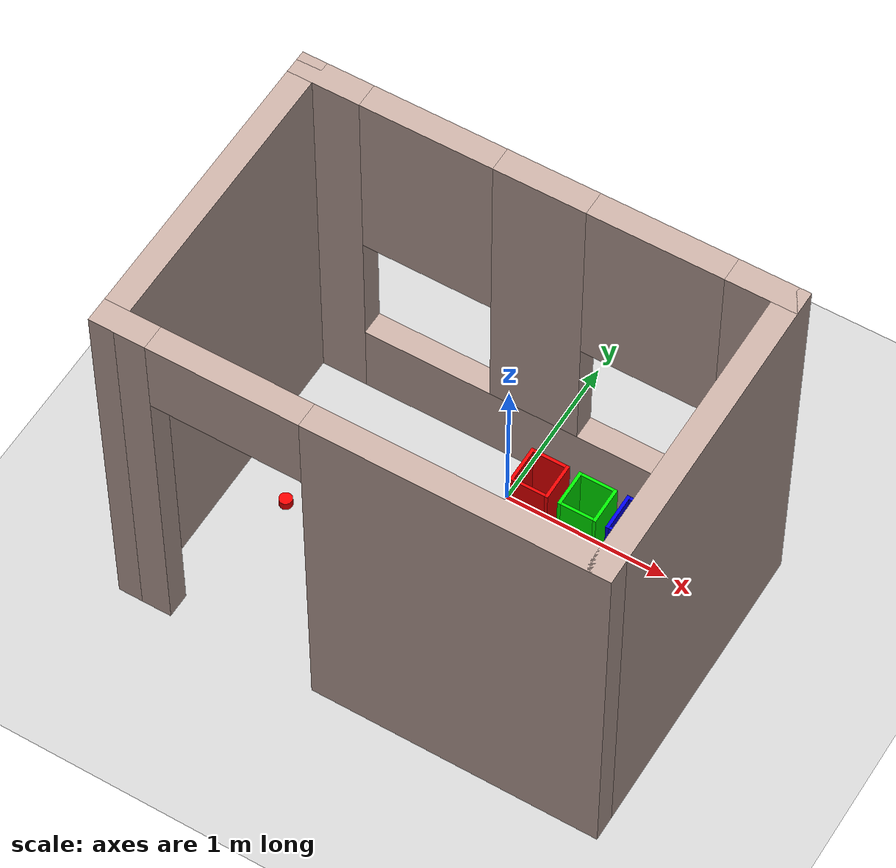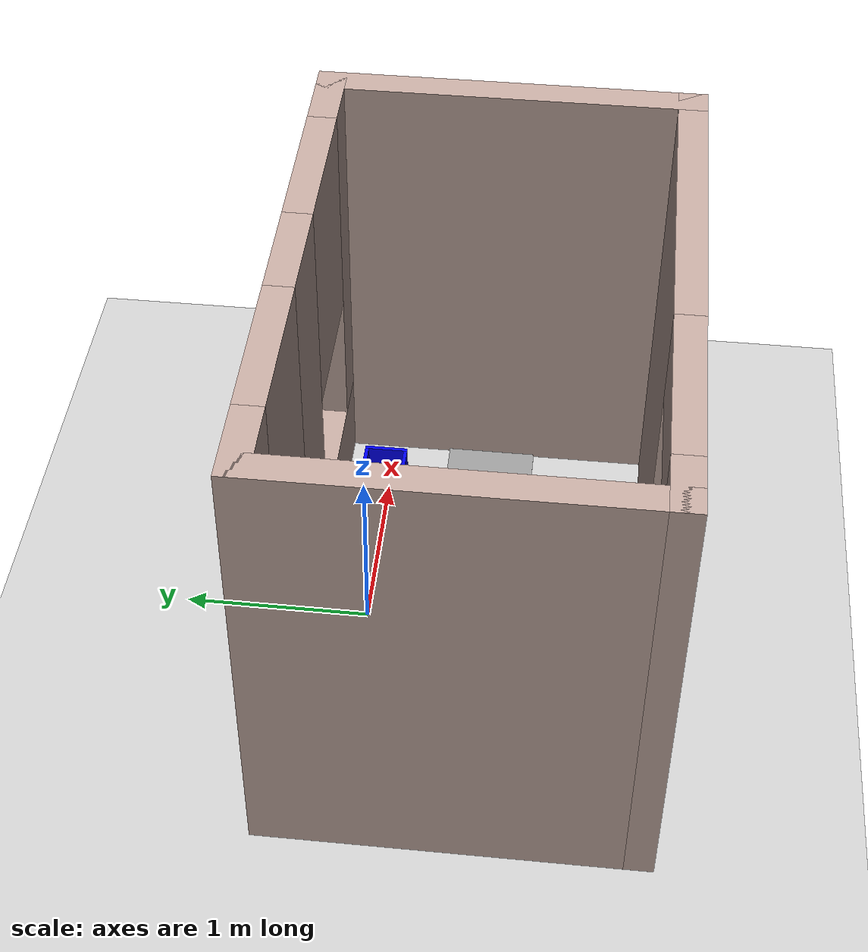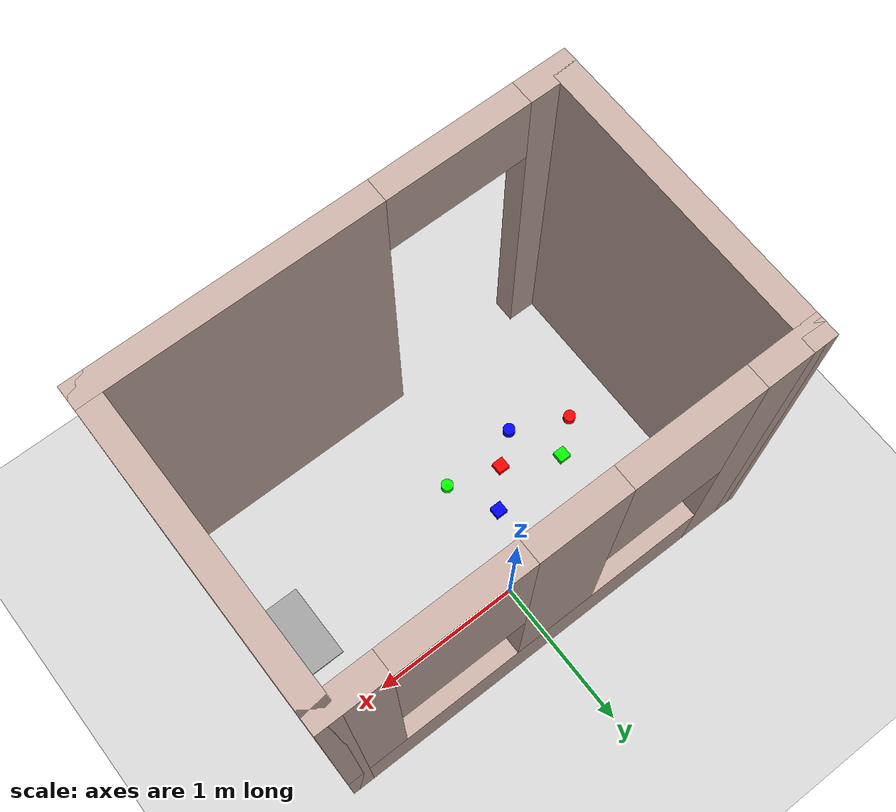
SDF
<sdf version="1.7">
 <world name="default">
  <light name="sun" type="directional">
   <pose>0 0 10 0 -0 0</pose>
   <diffuse>0.8 0.8 0.8 1</diffuse>
   <specular>0.2 0.2 0.2 1</specular>
   <attenuation>
    <range>1000</range>
    <constant>0.9</constant>
    <linear>0.01</linear>
    <quadratic>0.001</quadratic>
   </attenuation>
   <direction>-0.5 0.1 -0.9</direction>
   <spot><inner_angle>0</inner_angle><outer_angle>0</outer_angle><falloff>0</falloff></spot>
  </light>
  <model name="ground_plane">
   <static>1</static>
   <link name="link">
    <collision name="collision">
     <geometry><plane><normal>0 0 1</normal><size>100 100</size></plane></geometry>
     <surface>
      <contact><collide_bitmask>65535</collide_bitmask></contact>
      <friction><ode><mu>100</mu><mu2>50</mu2></ode></friction>
     </surface>
    </collision>
    <visual name="visual">
     <cast_shadows>0</cast_shadows>
     <geometry><plane><normal>0 0 1</normal><size>100 100</size></plane></geometry>
     <material>
      <script><uri>file://media/materials/scripts/gazebo.material</uri><name>Gazebo/Grey</name></script>
     </material>
    </visual>
   </link>
  </model>
  <gravity>0 0 -9.8</gravity>
  <magnetic_field>6e-06 2.3e-05 -4.2e-05</magnetic_field>
  <atmosphere type="adiabatic"/>
  <physics type="ode">
   <max_step_size>0.001</max_step_size>
   <real_time_factor>1</real_time_factor>
   <real_time_update_rate>1000</real_time_update_rate>
  </physics>
  <scene><ambient>0.4 0.4 0.4 1</ambient><background>0.7 0.7 0.7 1</background><shadows>1</shadows></scene>
  <spherical_coordinates>
   <surface_model>EARTH_WGS84</surface_model>
   <latitude_deg>0</latitude_deg>
   <longitude_deg>0</longitude_deg>
   <elevation>0</elevation>
   <heading_deg>0</heading_deg>
  </spherical_coordinates>
  <model name="simple_room">
   <link name="Wall_0">
    <collision name="Wall_0_Collision">
     <geometry><box><size>2 0.15 2.5</size></box></geometry>
     <pose>0 0 1.25 0 -0 0</pose>
    </collision>
    <visual name="Wall_0_Visual">
     <pose>0 0 1.25 0 -0 0</pose>
     <geometry><box><size>2 0.15 2.5</size></box></geometry>
     <material>
      <script><uri>file://media/materials/scripts/gazebo.material</uri><name>Gazebo/Grey</name></script>
      <ambient>0.760784 0.662745 0.627451 1</ambient>
     </material>
     <meta><layer>0</layer></meta>
    </visual>
    <pose>-1.425 -0.6025 0 0 -0 1.5708</pose>
   </link>
   <link name="Wall_1">
    <pose>0 0.3225 0 0 -0 0</pose>
    <visual name="Wall_1_Visual_0">
     <pose>-1.2825 0 1.25 0 -0 0</pose>
     <geometry><box><size>0.435 0.15 2.5</size></box></geometry>
     <material>
      <script><uri>file://media/materials/scripts/gazebo.material</uri><name>Gazebo/Grey</name></script>
      <ambient>0.760784 0.662745 0.627451 1</ambient>
     </material>
     <meta><layer>0</layer></meta>
    </visual>
    <collision name="Wall_1_Collision_0">
     <geometry><box><size>0.435 0.15 2.5</size></box></geometry>
     <pose>-1.2825 0 1.25 0 -0 0</pose>
    </collision>
    <visual name="Wall_1_Visual_1">
     <pose>0.2175 0 0.25 0 -0 0</pose>
     <geometry><box><size>2.565 0.15 0.5</size></box></geometry>
     <material>
      <script><uri>file://media/materials/scripts/gazebo.material</uri><name>Gazebo/Grey</name></script>
      <ambient>0.760784 0.662745 0.627451 1</ambient>
     </material>
     <meta><layer>0</layer></meta>
    </visual>
    <collision name="Wall_1_Collision_1">
     <geometry><box><size>2.565 0.15 0.5</size></box></geometry>
     <pose>0.2175 0 0.25 0 -0 0</pose>
    </collision>
    <visual name="Wall_1_Visual_2">
     <pose>0.01 0 1.5 0 -0 0</pose>
     <geometry><box><size>0.55 0.15 2</size></box></geometry>
     <material>
      <script><uri>file://media/materials/scripts/gazebo.material</uri><name>Gazebo/Grey</name></script>
      <ambient>0.760784 0.662745 0.627451 1</ambient>
     </material>
     <meta><layer>0</layer></meta>
    </visual>
    <collision name="Wall_1_Collision_2">
     <geometry><box><size>0.55 0.15 2</size></box></geometry>
     <pose>0.01 0 1.5 0 -0 0</pose>
    </collision>
    <visual name="Wall_1_Visual_3">
     <pose>1.2925 0 1.5 0 -0 0</pose>
     <geometry><box><size>0.415 0.15 2</size></box></geometry>
     <material>
      <script><uri>file://media/materials/scripts/gazebo.material</uri><name>Gazebo/Grey</name></script>
      <ambient>0.760784 0.662745 0.627451 1</ambient>
     </material>
     <meta><layer>0</layer></meta>
    </visual>
    <collision name="Wall_1_Collision_3">
     <geometry><box><size>0.415 0.15 2</size></box></geometry>
     <pose>1.2925 0 1.5 0 -0 0</pose>
    </collision>
    <visual name="Wall_1_Visual_4">
     <pose>-0.665 0 1.9 0 -0 0</pose>
     <geometry><box><size>0.8 0.15 1.2</size></box></geometry>
     <material>
      <script><uri>file://media/materials/scripts/gazebo.material</uri><name>Gazebo/Grey</name></script>
      <ambient>0.760784 0.662745 0.627451 1</ambient>
     </material>
     <meta><layer>0</layer></meta>
    </visual>
    <collision name="Wall_1_Collision_4">
     <geometry><box><size>0.8 0.15 1.2</size></box></geometry>
     <pose>-0.665 0 1.9 0 -0 0</pose>
    </collision>
    <visual name="Wall_1_Visual_5">
     <pose>0.685 0 1.9 0 -0 0</pose>
     <geometry><box><size>0.8 0.15 1.2</size></box></geometry>
     <material>
      <script><uri>file://media/materials/scripts/gazebo.material</uri><name>Gazebo/Grey</name></script>
      <ambient>0.760784 0.662745 0.627451 1</ambient>
     </material>
     <meta><layer>0</layer></meta>
    </visual>
    <collision name="Wall_1_Collision_5">
     <geometry><box><size>0.8 0.15 1.2</size></box></geometry>
     <pose>0.685 0 1.9 0 -0 0</pose>
    </collision>
   </link>
   <link name="Wall_2">
    <collision name="Wall_2_Collision">
     <geometry><box><size>2 0.15 2.5</size></box></geometry>
     <pose>0 0 1.25 0 -0 0</pose>
    </collision>
    <visual name="Wall_2_Visual">
     <pose>0 0 1.25 0 -0 0</pose>
     <geometry><box><size>2 0.15 2.5</size></box></geometry>
     <material>
      <script><uri>file://media/materials/scripts/gazebo.material</uri><name>Gazebo/Grey</name></script>
      <ambient>0.760784 0.662745 0.627451 1</ambient>
     </material>
     <meta><layer>0</layer></meta>
    </visual>
    <pose>1.425 -0.6025 0 0 -0 -1.5708</pose>
   </link>
   <link name="Wall_3">
    <pose>0 -1.5275 0 0 -0 3.14159</pose>
    <visual name="Wall_3_Visual_0">
     <pose>-0.6175 0 1.25 0 -0 0</pose>
     <geometry><box><size>1.765 0.15 2.5</size></box></geometry>
     <material>
      <script><uri>file://media/materials/scripts/gazebo.material</uri><name>Gazebo/Grey</name></script>
      <ambient>0.760784 0.662745 0.627451 1</ambient>
     </material>
     <meta><layer>0</layer></meta>
    </visual>
    <collision name="Wall_3_Collision_0">
     <geometry><box><size>1.765 0.15 2.5</size></box></geometry>
     <pose>-0.6175 0 1.25 0 -0 0</pose>
    </collision>
    <visual name="Wall_3_Visual_1">
     <pose>1.3325 0 1.25 0 -0 0</pose>
     <geometry><box><size>0.335 0.15 2.5</size></box></geometry>
     <material>
      <script><uri>file://media/materials/scripts/gazebo.material</uri><name>Gazebo/Grey</name></script>
      <ambient>0.760784 0.662745 0.627451 1</ambient>
     </material>
     <meta><layer>0</layer></meta>
    </visual>
    <collision name="Wall_3_Collision_1">
     <geometry><box><size>0.335 0.15 2.5</size></box></geometry>
     <pose>1.3325 0 1.25 0 -0 0</pose>
    </collision>
    <visual name="Wall_3_Visual_2">
     <pose>0.715 0 2.25 0 -0 0</pose>
     <geometry><box><size>0.9 0.15 0.5</size></box></geometry>
     <material>
      <script><uri>file://media/materials/scripts/gazebo.material</uri><name>Gazebo/Grey</name></script>
      <ambient>0.760784 0.662745 0.627451 1</ambient>
     </material>
     <meta><layer>0</layer></meta>
    </visual>
    <collision name="Wall_3_Collision_2">
     <geometry><box><size>0.9 0.15 0.5</size></box></geometry>
     <pose>0.715 0 2.25 0 -0 0</pose>
    </collision>
   </link>
   <static>1</static>
  </model>
  <model name="box_red">
   <link name="link_0">
    <inertial>
     <mass>0.94</mass>
     <inertia>
      <ixx>0.00316467</ixx>
      <ixy>0</ixy>
      <ixz>0</ixz>
      <iyy>0.00316467</iyy>
      <iyz>0</iyz>
      <izz>0.00626667</izz>
     </inertia>
    </inertial>
    <pose>0 0 -0.152 0 -0 0</pose>
    <visual name="visual">
     <geometry><box><size>0.2 0.2 0.02</size></box></geometry>
     <material>
      <lighting>1</lighting>
      <script><uri>file://media/materials/scripts/gazebo.material</uri><name>Gazebo/Grey</name></script>
      <shader type="pixel"><normal_map>__default__</normal_map></shader>
      <ambient>1 0 0 1</ambient>
      <diffuse>0.7 0.7 0.7 1</diffuse>
      <specular>0.01 0.01 0.01 1</specular>
      <emissive>0 0 0 1</emissive>
     </material>
    </visual>
    <collision name="collision">
     <geometry><box><size>0.2 0.2 0.02</size></box></geometry>
     <surface>
      <friction>
       <ode><mu>1</mu><mu2>1</mu2><fdir1>0 0 0</fdir1><slip1>0</slip1><slip2>0</slip2></ode>
       <torsional>
        <coefficient>1</coefficient>
        <patch_radius>0</patch_radius>
        <surface_radius>0</surface_radius>
        <use_patch_radius>1</use_patch_radius>
        <ode><slip>0</slip></ode>
       </torsional>
      </friction>
      <bounce><restitution_coefficient>0</restitution_coefficient><threshold>1e+06</threshold></bounce>
      <contact>
       <collide_without_contact>0</collide_without_contact>
       <collide_without_contact_bitmask>1</collide_without_contact_bitmask>
       <collide_bitmask>1</collide_bitmask>
       <ode>
        <soft_cfm>0</soft_cfm>
        <soft_erp>0.2</soft_erp>
        <kp>1e+13</kp>
        <kd>1</kd>
        <max_vel>0.01</max_vel>
        <min_depth>0</min_depth>
       </ode>
       <bullet>
        <split_impulse>1</split_impulse>
        <split_impulse_penetration_threshold>-0.01</split_impulse_penetration_threshold>
        <soft_cfm>0</soft_cfm>
        <soft_erp>0.2</soft_erp>
        <kp>1e+13</kp>
        <kd>1</kd>
       </bullet>
      </contact>
     </surface>
    </collision>
   </link>
   <link name="link_1">
    <inertial>
     <mass>2.068</mass>
     <inertia>
      <ixx>0.0359143</ixx>
      <ixy>0</ixy>
      <ixz>0</ixz>
      <iyy>0.0276423</iyy>
      <iyz>0</iyz>
      <izz>0.00840987</izz>
     </inertia>
    </inertial>
    <pose>-0.11 0 0.038 0 -0 0</pose>
    <visual name="visual">
     <geometry><box><size>0.02 0.24 0.4</size></box></geometry>
     <material>
      <lighting>1</lighting>
      <script><uri>file://media/materials/scripts/gazebo.material</uri><name>Gazebo/Grey</name></script>
      <shader type="pixel"><normal_map>__default__</normal_map></shader>
      <ambient>1 0 0 1</ambient>
      <diffuse>0.7 0.7 0.7 1</diffuse>
      <specular>0.01 0.01 0.01 1</specular>
      <emissive>0 0 0 1</emissive>
     </material>
    </visual>
    <collision name="collision">
     <geometry><box><size>0.02 0.24 0.4</size></box></geometry>
     <surface>
      <friction>
       <ode><mu>1</mu><mu2>1</mu2><fdir1>0 0 0</fdir1><slip1>0</slip1><slip2>0</slip2></ode>
       <torsional>
        <coefficient>1</coefficient>
        <patch_radius>0</patch_radius>
        <surface_radius>0</surface_radius>
        <use_patch_radius>1</use_patch_radius>
        <ode><slip>0</slip></ode>
       </torsional>
      </friction>
      <bounce><restitution_coefficient>0</restitution_coefficient><threshold>1e+06</threshold></bounce>
      <contact>
       <collide_without_contact>0</collide_without_contact>
       <collide_without_contact_bitmask>1</collide_without_contact_bitmask>
       <collide_bitmask>1</collide_bitmask>
       <ode>
        <soft_cfm>0</soft_cfm>
        <soft_erp>0.2</soft_erp>
        <kp>1e+13</kp>
        <kd>1</kd>
        <max_vel>0.01</max_vel>
        <min_depth>0</min_depth>
       </ode>
       <bullet>
        <split_impulse>1</split_impulse>
        <split_impulse_penetration_threshold>-0.01</split_impulse_penetration_threshold>
        <soft_cfm>0</soft_cfm>
        <soft_erp>0.2</soft_erp>
        <kp>1e+13</kp>
        <kd>1</kd>
       </bullet>
      </contact>
     </surface>
    </collision>
   </link>
   <link name="link_1_clone">
    <inertial>
     <mass>2.068</mass>
     <inertia>
      <ixx>0.0359143</ixx>
      <ixy>0</ixy>
      <ixz>0</ixz>
      <iyy>0.0276423</iyy>
      <iyz>0</iyz>
      <izz>0.00840987</izz>
     </inertia>
    </inertial>
    <pose>0.11 0 0.038 0 -0 0</pose>
    <visual name="visual">
     <geometry><box><size>0.02 0.24 0.4</size></box></geometry>
     <material>
      <lighting>1</lighting>
      <script><uri>file://media/materials/scripts/gazebo.material</uri><name>Gazebo/Grey</name></script>
      <shader type="pixel"><normal_map>__default__</normal_map></shader>
      <ambient>1 0 0 1</ambient>
      <diffuse>0.7 0.7 0.7 1</diffuse>
      <specular>0.01 0.01 0.01 1</specular>
      <emissive>0 0 0 1</emissive>
     </material>
    </visual>
    <collision name="collision">
     <geometry><box><size>0.02 0.24 0.4</size></box></geometry>
     <surface>
      <friction>
       <ode><mu>1</mu><mu2>1</mu2><fdir1>0 0 0</fdir1><slip1>0</slip1><slip2>0</slip2></ode>
       <torsional>
        <coefficient>1</coefficient>
        <patch_radius>0</patch_radius>
        <surface_radius>0</surface_radius>
        <use_patch_radius>1</use_patch_radius>
        <ode><slip>0</slip></ode>
       </torsional>
      </friction>
      <bounce><restitution_coefficient>0</restitution_coefficient><threshold>1e+06</threshold></bounce>
      <contact>
       <collide_without_contact>0</collide_without_contact>
       <collide_without_contact_bitmask>1</collide_without_contact_bitmask>
       <collide_bitmask>1</collide_bitmask>
       <ode>
        <soft_cfm>0</soft_cfm>
        <soft_erp>0.2</soft_erp>
        <kp>1e+13</kp>
        <kd>1</kd>
        <max_vel>0.01</max_vel>
        <min_depth>0</min_depth>
       </ode>
       <bullet>
        <split_impulse>1</split_impulse>
        <split_impulse_penetration_threshold>-0.01</split_impulse_penetration_threshold>
        <soft_cfm>0</soft_cfm>
        <soft_erp>0.2</soft_erp>
        <kp>1e+13</kp>
        <kd>1</kd>
       </bullet>
      </contact>
     </surface>
    </collision>
   </link>
   <link name="link_1_clone_0">
    <inertial>
     <mass>2.068</mass>
     <inertia>
      <ixx>0.0359143</ixx>
      <ixy>0</ixy>
      <ixz>0</ixz>
      <iyy>0.0276423</iyy>
      <iyz>0</iyz>
      <izz>0.00840987</izz>
     </inertia>
    </inertial>
    <pose>0 0.11 0.038 0 -0 0</pose>
    <visual name="visual">
     <geometry><box><size>0.2 0.02 0.4</size></box></geometry>
     <material>
      <lighting>1</lighting>
      <script><uri>file://media/materials/scripts/gazebo.material</uri><name>Gazebo/Grey</name></script>
      <shader type="pixel"><normal_map>__default__</normal_map></shader>
      <ambient>1 0 0 1</ambient>
      <diffuse>0.7 0.7 0.7 1</diffuse>
      <specular>0.01 0.01 0.01 1</specular>
      <emissive>0 0 0 1</emissive>
     </material>
    </visual>
    <collision name="collision">
     <geometry><box><size>0.2 0.02 0.4</size></box></geometry>
     <surface>
      <friction>
       <ode><mu>1</mu><mu2>1</mu2><fdir1>0 0 0</fdir1><slip1>0</slip1><slip2>0</slip2></ode>
       <torsional>
        <coefficient>1</coefficient>
        <patch_radius>0</patch_radius>
        <surface_radius>0</surface_radius>
        <use_patch_radius>1</use_patch_radius>
        <ode><slip>0</slip></ode>
       </torsional>
      </friction>
      <bounce><restitution_coefficient>0</restitution_coefficient><threshold>1e+06</threshold></bounce>
      <contact>
       <collide_without_contact>0</collide_without_contact>
       <collide_without_contact_bitmask>1</collide_without_contact_bitmask>
       <collide_bitmask>1</collide_bitmask>
       <ode>
        <soft_cfm>0</soft_cfm>
        <soft_erp>0.2</soft_erp>
        <kp>1e+13</kp>
        <kd>1</kd>
        <max_vel>0.01</max_vel>
        <min_depth>0</min_depth>
       </ode>
       <bullet>
        <split_impulse>1</split_impulse>
        <split_impulse_penetration_threshold>-0.01</split_impulse_penetration_threshold>
        <soft_cfm>0</soft_cfm>
        <soft_erp>0.2</soft_erp>
        <kp>1e+13</kp>
        <kd>1</kd>
       </bullet>
      </contact>
     </surface>
    </collision>
   </link>
   <link name="link_1_clone_0_clone">
    <inertial>
     <mass>2.068</mass>
     <inertia>
      <ixx>0.0359143</ixx>
      <ixy>0</ixy>
      <ixz>0</ixz>
      <iyy>0.0276423</iyy>
      <iyz>0</iyz>
      <izz>0.00840987</izz>
     </inertia>
    </inertial>
    <pose>0 -0.11 0.038 0 -0 0</pose>
    <visual name="visual">
     <geometry><box><size>0.2 0.02 0.4</size></box></geometry>
     <material>
      <lighting>1</lighting>
      <script><uri>file://media/materials/scripts/gazebo.material</uri><name>Gazebo/Grey</name></script>
      <shader type="pixel"><normal_map>__default__</normal_map></shader>
      <ambient>1 0 0 1</ambient>
      <diffuse>0.7 0.7 0.7 1</diffuse>
      <specular>0.01 0.01 0.01 1</specular>
      <emissive>0 0 0 1</emissive>
     </material>
    </visual>
    <collision name="collision">
     <geometry><box><size>0.2 0.02 0.4</size></box></geometry>
     <surface>
      <friction>
       <ode><mu>1</mu><mu2>1</mu2><fdir1>0 0 0</fdir1><slip1>0</slip1><slip2>0</slip2></ode>
       <torsional>
        <coefficient>1</coefficient>
        <patch_radius>0</patch_radius>
        <surface_radius>0</surface_radius>
        <use_patch_radius>1</use_patch_radius>
        <ode><slip>0</slip></ode>
       </torsional>
      </friction>
      <bounce><restitution_coefficient>0</restitution_coefficient><threshold>1e+06</threshold></bounce>
      <contact>
       <collide_without_contact>0</collide_without_contact>
       <collide_without_contact_bitmask>1</collide_without_contact_bitmask>
       <collide_bitmask>1</collide_bitmask>
       <ode>
        <soft_cfm>0</soft_cfm>
        <soft_erp>0.2</soft_erp>
        <kp>1e+13</kp>
        <kd>1</kd>
        <max_vel>0.01</max_vel>
        <min_depth>0</min_depth>
       </ode>
       <bullet>
        <split_impulse>1</split_impulse>
        <split_impulse_penetration_threshold>-0.01</split_impulse_penetration_threshold>
        <soft_cfm>0</soft_cfm>
        <soft_erp>0.2</soft_erp>
        <kp>1e+13</kp>
        <kd>1</kd>
       </bullet>
      </contact>
     </surface>
    </collision>
   </link>
   <static>0</static>
   <pose>0.2 0 0.162 0 -0 0</pose>
  </model>
  <model name="box_green">
   <link name="link_0">
    <inertial>
     <mass>0.94</mass>
     <inertia>
      <ixx>0.00316467</ixx>
      <ixy>0</ixy>
      <ixz>0</ixz>
      <iyy>0.00316467</iyy>
      <iyz>0</iyz>
      <izz>0.00626667</izz>
     </inertia>
    </inertial>
    <pose>0 0 -0.152 0 -0 0</pose>
    <visual name="visual">
     <geometry><box><size>0.2 0.2 0.02</size></box></geometry>
     <material>
      <lighting>1</lighting>
      <script><uri>file://media/materials/scripts/gazebo.material</uri><name>Gazebo/Grey</name></script>
      <shader type="pixel"><normal_map>__default__</normal_map></shader>
      <ambient>0 1 0 1</ambient>
      <diffuse>0.7 0.7 0.7 1</diffuse>
      <specular>0.01 0.01 0.01 1</specular>
      <emissive>0 0 0 1</emissive>
     </material>
    </visual>
    <collision name="collision">
     <geometry><box><size>0.2 0.2 0.02</size></box></geometry>
     <surface>
      <friction>
       <ode><mu>1</mu><mu2>1</mu2><fdir1>0 0 0</fdir1><slip1>0</slip1><slip2>0</slip2></ode>
       <torsional>
        <coefficient>1</coefficient>
        <patch_radius>0</patch_radius>
        <surface_radius>0</surface_radius>
        <use_patch_radius>1</use_patch_radius>
        <ode><slip>0</slip></ode>
       </torsional>
      </friction>
      <bounce><restitution_coefficient>0</restitution_coefficient><threshold>1e+06</threshold></bounce>
      <contact>
       <collide_without_contact>0</collide_without_contact>
       <collide_without_contact_bitmask>1</collide_without_contact_bitmask>
       <collide_bitmask>1</collide_bitmask>
       <ode>
        <soft_cfm>0</soft_cfm>
        <soft_erp>0.2</soft_erp>
        <kp>1e+13</kp>
        <kd>1</kd>
        <max_vel>0.01</max_vel>
        <min_depth>0</min_depth>
       </ode>
       <bullet>
        <split_impulse>1</split_impulse>
        <split_impulse_penetration_threshold>-0.01</split_impulse_penetration_threshold>
        <soft_cfm>0</soft_cfm>
        <soft_erp>0.2</soft_erp>
        <kp>1e+13</kp>
        <kd>1</kd>
       </bullet>
      </contact>
     </surface>
    </collision>
   </link>
   <link name="link_1">
    <inertial>
     <mass>2.256</mass>
     <inertia>
      <ixx>0.0409088</ixx>
      <ixy>0</ixy>
      <ixz>0</ixz>
      <iyy>0.0301552</iyy>
      <iyz>0</iyz>
      <izz>0.010904</izz>
     </inertia>
    </inertial>
    <pose>-0.11 0 0.038 0 -0 0</pose>
    <visual name="visual">
     <geometry><box><size>0.02 0.24 0.4</size></box></geometry>
     <material>
      <lighting>1</lighting>
      <script><uri>file://media/materials/scripts/gazebo.material</uri><name>Gazebo/Grey</name></script>
      <shader type="pixel"><normal_map>__default__</normal_map></shader>
      <ambient>0 1 0 1</ambient>
      <diffuse>0.7 0.7 0.7 1</diffuse>
      <specular>0.01 0.01 0.01 1</specular>
      <emissive>0 0 0 1</emissive>
     </material>
    </visual>
    <collision name="collision">
     <geometry><box><size>0.02 0.24 0.4</size></box></geometry>
     <surface>
      <friction>
       <ode><mu>1</mu><mu2>1</mu2><fdir1>0 0 0</fdir1><slip1>0</slip1><slip2>0</slip2></ode>
       <torsional>
        <coefficient>1</coefficient>
        <patch_radius>0</patch_radius>
        <surface_radius>0</surface_radius>
        <use_patch_radius>1</use_patch_radius>
        <ode><slip>0</slip></ode>
       </torsional>
      </friction>
      <bounce><restitution_coefficient>0</restitution_coefficient><threshold>1e+06</threshold></bounce>
      <contact>
       <collide_without_contact>0</collide_without_contact>
       <collide_without_contact_bitmask>1</collide_without_contact_bitmask>
       <collide_bitmask>1</collide_bitmask>
       <ode>
        <soft_cfm>0</soft_cfm>
        <soft_erp>0.2</soft_erp>
        <kp>1e+13</kp>
        <kd>1</kd>
        <max_vel>0.01</max_vel>
        <min_depth>0</min_depth>
       </ode>
       <bullet>
        <split_impulse>1</split_impulse>
        <split_impulse_penetration_threshold>-0.01</split_impulse_penetration_threshold>
        <soft_cfm>0</soft_cfm>
        <soft_erp>0.2</soft_erp>
        <kp>1e+13</kp>
        <kd>1</kd>
       </bullet>
      </contact>
     </surface>
    </collision>
   </link>
   <link name="link_1_clone">
    <inertial>
     <mass>2.256</mass>
     <inertia>
      <ixx>0.0409088</ixx>
      <ixy>0</ixy>
      <ixz>0</ixz>
      <iyy>0.0301552</iyy>
      <iyz>0</iyz>
      <izz>0.010904</izz>
     </inertia>
    </inertial>
    <pose>0.11 0 0.038 0 -0 0</pose>
    <visual name="visual">
     <geometry><box><size>0.02 0.24 0.4</size></box></geometry>
     <material>
      <lighting>1</lighting>
      <script><uri>file://media/materials/scripts/gazebo.material</uri><name>Gazebo/Grey</name></script>
      <shader type="pixel"><normal_map>__default__</normal_map></shader>
      <ambient>0 1 0 1</ambient>
      <diffuse>0.7 0.7 0.7 1</diffuse>
      <specular>0.01 0.01 0.01 1</specular>
      <emissive>0 0 0 1</emissive>
     </material>
    </visual>
    <collision name="collision">
     <geometry><box><size>0.02 0.24 0.4</size></box></geometry>
     <surface>
      <friction>
       <ode><mu>1</mu><mu2>1</mu2><fdir1>0 0 0</fdir1><slip1>0</slip1><slip2>0</slip2></ode>
       <torsional>
        <coefficient>1</coefficient>
        <patch_radius>0</patch_radius>
        <surface_radius>0</surface_radius>
        <use_patch_radius>1</use_patch_radius>
        <ode><slip>0</slip></ode>
       </torsional>
      </friction>
      <bounce><restitution_coefficient>0</restitution_coefficient><threshold>1e+06</threshold></bounce>
      <contact>
       <collide_without_contact>0</collide_without_contact>
       <collide_without_contact_bitmask>1</collide_without_contact_bitmask>
       <collide_bitmask>1</collide_bitmask>
       <ode>
        <soft_cfm>0</soft_cfm>
        <soft_erp>0.2</soft_erp>
        <kp>1e+13</kp>
        <kd>1</kd>
        <max_vel>0.01</max_vel>
        <min_depth>0</min_depth>
       </ode>
       <bullet>
        <split_impulse>1</split_impulse>
        <split_impulse_penetration_threshold>-0.01</split_impulse_penetration_threshold>
        <soft_cfm>0</soft_cfm>
        <soft_erp>0.2</soft_erp>
        <kp>1e+13</kp>
        <kd>1</kd>
       </bullet>
      </contact>
     </surface>
    </collision>
   </link>
   <link name="link_1_clone_0">
    <inertial>
     <mass>1.88</mass>
     <inertia>
      <ixx>0.0251293</ixx>
      <ixy>0</ixy>
      <ixz>0</ixz>
      <iyy>0.0313333</iyy>
      <iyz>0</iyz>
      <izz>0.00632933</izz>
     </inertia>
    </inertial>
    <pose>0 0.11 0.038 0 -0 0</pose>
    <visual name="visual">
     <geometry><box><size>0.2 0.02 0.4</size></box></geometry>
     <material>
      <lighting>1</lighting>
      <script><uri>file://media/materials/scripts/gazebo.material</uri><name>Gazebo/Grey</name></script>
      <shader type="pixel"><normal_map>__default__</normal_map></shader>
      <ambient>0 1 0 1</ambient>
      <diffuse>0.7 0.7 0.7 1</diffuse>
      <specular>0.01 0.01 0.01 1</specular>
      <emissive>0 0 0 1</emissive>
     </material>
    </visual>
    <collision name="collision">
     <geometry><box><size>0.2 0.02 0.4</size></box></geometry>
     <surface>
      <friction>
       <ode><mu>1</mu><mu2>1</mu2><fdir1>0 0 0</fdir1><slip1>0</slip1><slip2>0</slip2></ode>
       <torsional>
        <coefficient>1</coefficient>
        <patch_radius>0</patch_radius>
        <surface_radius>0</surface_radius>
        <use_patch_radius>1</use_patch_radius>
        <ode><slip>0</slip></ode>
       </torsional>
      </friction>
      <bounce><restitution_coefficient>0</restitution_coefficient><threshold>1e+06</threshold></bounce>
      <contact>
       <collide_without_contact>0</collide_without_contact>
       <collide_without_contact_bitmask>1</collide_without_contact_bitmask>
       <collide_bitmask>1</collide_bitmask>
       <ode>
        <soft_cfm>0</soft_cfm>
        <soft_erp>0.2</soft_erp>
        <kp>1e+13</kp>
        <kd>1</kd>
        <max_vel>0.01</max_vel>
        <min_depth>0</min_depth>
       </ode>
       <bullet>
        <split_impulse>1</split_impulse>
        <split_impulse_penetration_threshold>-0.01</split_impulse_penetration_threshold>
        <soft_cfm>0</soft_cfm>
        <soft_erp>0.2</soft_erp>
        <kp>1e+13</kp>
        <kd>1</kd>
       </bullet>
      </contact>
     </surface>
    </collision>
   </link>
   <link name="link_1_clone_0_clone">
    <inertial>
     <mass>1.88</mass>
     <inertia>
      <ixx>0.0251293</ixx>
      <ixy>0</ixy>
      <ixz>0</ixz>
      <iyy>0.0313333</iyy>
      <iyz>0</iyz>
      <izz>0.00632933</izz>
     </inertia>
    </inertial>
    <pose>0 -0.11 0.038 0 -0 0</pose>
    <visual name="visual">
     <geometry><box><size>0.2 0.02 0.4</size></box></geometry>
     <material>
      <lighting>1</lighting>
      <script><uri>file://media/materials/scripts/gazebo.material</uri><name>Gazebo/Grey</name></script>
      <shader type="pixel"><normal_map>__default__</normal_map></shader>
      <ambient>0 1 0 1</ambient>
      <diffuse>0.7 0.7 0.7 1</diffuse>
      <specular>0.01 0.01 0.01 1</specular>
      <emissive>0 0 0 1</emissive>
     </material>
    </visual>
    <collision name="collision">
     <geometry><box><size>0.2 0.02 0.4</size></box></geometry>
     <surface>
      <friction>
       <ode><mu>1</mu><mu2>1</mu2><fdir1>0 0 0</fdir1><slip1>0</slip1><slip2>0</slip2></ode>
       <torsional>
        <coefficient>1</coefficient>
        <patch_radius>0</patch_radius>
        <surface_radius>0</surface_radius>
        <use_patch_radius>1</use_patch_radius>
        <ode><slip>0</slip></ode>
       </torsional>
      </friction>
      <bounce><restitution_coefficient>0</restitution_coefficient><threshold>1e+06</threshold></bounce>
      <contact>
       <collide_without_contact>0</collide_without_contact>
       <collide_without_contact_bitmask>1</collide_without_contact_bitmask>
       <collide_bitmask>1</collide_bitmask>
       <ode>
        <soft_cfm>0</soft_cfm>
        <soft_erp>0.2</soft_erp>
        <kp>1e+13</kp>
        <kd>1</kd>
        <max_vel>0.01</max_vel>
        <min_depth>0</min_depth>
       </ode>
       <bullet>
        <split_impulse>1</split_impulse>
        <split_impulse_penetration_threshold>-0.01</split_impulse_penetration_threshold>
        <soft_cfm>0</soft_cfm>
        <soft_erp>0.2</soft_erp>
        <kp>1e+13</kp>
        <kd>1</kd>
       </bullet>
      </contact>
     </surface>
    </collision>
   </link>
   <static>0</static>
   <pose>0.5 0 0.162 0 -0 0</pose>
  </model>
  <model name="box_blue">
   <link name="link_0">
    <inertial>
     <mass>0.94</mass>
     <inertia>
      <ixx>0.00316467</ixx>
      <ixy>0</ixy>
      <ixz>0</ixz>
      <iyy>0.00316467</iyy>
      <iyz>0</iyz>
      <izz>0.00626667</izz>
     </inertia>
    </inertial>
    <pose>0 0 -0.152 0 -0 0</pose>
    <visual name="visual">
     <geometry><box><size>0.2 0.2 0.02</size></box></geometry>
     <material>
      <lighting>1</lighting>
      <script><uri>file://media/materials/scripts/gazebo.material</uri><name>Gazebo/Grey</name></script>
      <shader type="pixel"><normal_map>__default__</normal_map></shader>
      <ambient>0 0 1 1</ambient>
      <diffuse>0.7 0.7 0.7 1</diffuse>
      <specular>0.01 0.01 0.01 1</specular>
      <emissive>0 0 0 1</emissive>
     </material>
    </visual>
    <collision name="collision">
     <geometry><box><size>0.2 0.2 0.02</size></box></geometry>
     <surface>
      <friction>
       <ode><mu>1</mu><mu2>1</mu2><fdir1>0 0 0</fdir1><slip1>0</slip1><slip2>0</slip2></ode>
       <torsional>
        <coefficient>1</coefficient>
        <patch_radius>0</patch_radius>
        <surface_radius>0</surface_radius>
        <use_patch_radius>1</use_patch_radius>
        <ode><slip>0</slip></ode>
       </torsional>
      </friction>
      <bounce><restitution_coefficient>0</restitution_coefficient><threshold>1e+06</threshold></bounce>
      <contact>
       <collide_without_contact>0</collide_without_contact>
       <collide_without_contact_bitmask>1</collide_without_contact_bitmask>
       <collide_bitmask>1</collide_bitmask>
       <ode>
        <soft_cfm>0</soft_cfm>
        <soft_erp>0.2</soft_erp>
        <kp>1e+13</kp>
        <kd>1</kd>
        <max_vel>0.01</max_vel>
        <min_depth>0</min_depth>
       </ode>
       <bullet>
        <split_impulse>1</split_impulse>
        <split_impulse_penetration_threshold>-0.01</split_impulse_penetration_threshold>
        <soft_cfm>0</soft_cfm>
        <soft_erp>0.2</soft_erp>
        <kp>1e+13</kp>
        <kd>1</kd>
       </bullet>
      </contact>
     </surface>
    </collision>
   </link>
   <link name="link_1">
    <inertial>
     <mass>2.256</mass>
     <inertia>
      <ixx>0.0409088</ixx>
      <ixy>0</ixy>
      <ixz>0</ixz>
      <iyy>0.0301552</iyy>
      <iyz>0</iyz>
      <izz>0.010904</izz>
     </inertia>
    </inertial>
    <pose>-0.11 0 0.038 0 -0 0</pose>
    <visual name="visual">
     <geometry><box><size>0.02 0.24 0.4</size></box></geometry>
     <material>
      <lighting>1</lighting>
      <script><uri>file://media/materials/scripts/gazebo.material</uri><name>Gazebo/Grey</name></script>
      <shader type="pixel"><normal_map>__default__</normal_map></shader>
      <ambient>0 0 1 1</ambient>
      <diffuse>0.7 0.7 0.7 1</diffuse>
      <specular>0.01 0.01 0.01 1</specular>
      <emissive>0 0 0 1</emissive>
     </material>
    </visual>
    <collision name="collision">
     <geometry><box><size>0.02 0.24 0.4</size></box></geometry>
     <surface>
      <friction>
       <ode><mu>1</mu><mu2>1</mu2><fdir1>0 0 0</fdir1><slip1>0</slip1><slip2>0</slip2></ode>
       <torsional>
        <coefficient>1</coefficient>
        <patch_radius>0</patch_radius>
        <surface_radius>0</surface_radius>
        <use_patch_radius>1</use_patch_radius>
        <ode><slip>0</slip></ode>
       </torsional>
      </friction>
      <bounce><restitution_coefficient>0</restitution_coefficient><threshold>1e+06</threshold></bounce>
      <contact>
       <collide_without_contact>0</collide_without_contact>
       <collide_without_contact_bitmask>1</collide_without_contact_bitmask>
       <collide_bitmask>1</collide_bitmask>
       <ode>
        <soft_cfm>0</soft_cfm>
        <soft_erp>0.2</soft_erp>
        <kp>1e+13</kp>
        <kd>1</kd>
        <max_vel>0.01</max_vel>
        <min_depth>0</min_depth>
       </ode>
       <bullet>
        <split_impulse>1</split_impulse>
        <split_impulse_penetration_threshold>-0.01</split_impulse_penetration_threshold>
        <soft_cfm>0</soft_cfm>
        <soft_erp>0.2</soft_erp>
        <kp>1e+13</kp>
        <kd>1</kd>
       </bullet>
      </contact>
     </surface>
    </collision>
   </link>
   <link name="link_1_clone">
    <inertial>
     <mass>2.256</mass>
     <inertia>
      <ixx>0.0409088</ixx>
      <ixy>0</ixy>
      <ixz>0</ixz>
      <iyy>0.0301552</iyy>
      <iyz>0</iyz>
      <izz>0.010904</izz>
     </inertia>
    </inertial>
    <pose>0.11 0 0.038 0 -0 0</pose>
    <visual name="visual">
     <geometry><box><size>0.02 0.24 0.4</size></box></geometry>
     <material>
      <lighting>1</lighting>
      <script><uri>file://media/materials/scripts/gazebo.material</uri><name>Gazebo/Grey</name></script>
      <shader type="pixel"><normal_map>__default__</normal_map></shader>
      <ambient>0 0 1 1</ambient>
      <diffuse>0.7 0.7 0.7 1</diffuse>
      <specular>0.01 0.01 0.01 1</specular>
      <emissive>0 0 0 1</emissive>
     </material>
    </visual>
    <collision name="collision">
     <geometry><box><size>0.02 0.24 0.4</size></box></geometry>
     <surface>
      <friction>
       <ode><mu>1</mu><mu2>1</mu2><fdir1>0 0 0</fdir1><slip1>0</slip1><slip2>0</slip2></ode>
       <torsional>
        <coefficient>1</coefficient>
        <patch_radius>0</patch_radius>
        <surface_radius>0</surface_radius>
        <use_patch_radius>1</use_patch_radius>
        <ode><slip>0</slip></ode>
       </torsional>
      </friction>
      <bounce><restitution_coefficient>0</restitution_coefficient><threshold>1e+06</threshold></bounce>
      <contact>
       <collide_without_contact>0</collide_without_contact>
       <collide_without_contact_bitmask>1</collide_without_contact_bitmask>
       <collide_bitmask>1</collide_bitmask>
       <ode>
        <soft_cfm>0</soft_cfm>
        <soft_erp>0.2</soft_erp>
        <kp>1e+13</kp>
        <kd>1</kd>
        <max_vel>0.01</max_vel>
        <min_depth>0</min_depth>
       </ode>
       <bullet>
        <split_impulse>1</split_impulse>
        <split_impulse_penetration_threshold>-0.01</split_impulse_penetration_threshold>
        <soft_cfm>0</soft_cfm>
        <soft_erp>0.2</soft_erp>
        <kp>1e+13</kp>
        <kd>1</kd>
       </bullet>
      </contact>
     </surface>
    </collision>
   </link>
   <link name="link_1_clone_0">
    <inertial>
     <mass>1.88</mass>
     <inertia>
      <ixx>0.0251293</ixx>
      <ixy>0</ixy>
      <ixz>0</ixz>
      <iyy>0.0313333</iyy>
      <iyz>0</iyz>
      <izz>0.00632933</izz>
     </inertia>
    </inertial>
    <pose>0 0.11 0.038 0 -0 0</pose>
    <visual name="visual">
     <geometry><box><size>0.2 0.02 0.4</size></box></geometry>
     <material>
      <lighting>1</lighting>
      <script><uri>file://media/materials/scripts/gazebo.material</uri><name>Gazebo/Grey</name></script>
      <shader type="pixel"><normal_map>__default__</normal_map></shader>
      <ambient>0 0 1 1</ambient>
      <diffuse>0.7 0.7 0.7 1</diffuse>
      <specular>0.01 0.01 0.01 1</specular>
      <emissive>0 0 0 1</emissive>
     </material>
    </visual>
    <collision name="collision">
     <geometry><box><size>0.2 0.02 0.4</size></box></geometry>
     <surface>
      <friction>
       <ode><mu>1</mu><mu2>1</mu2><fdir1>0 0 0</fdir1><slip1>0</slip1><slip2>0</slip2></ode>
       <torsional>
        <coefficient>1</coefficient>
        <patch_radius>0</patch_radius>
        <surface_radius>0</surface_radius>
        <use_patch_radius>1</use_patch_radius>
        <ode><slip>0</slip></ode>
       </torsional>
      </friction>
      <bounce><restitution_coefficient>0</restitution_coefficient><threshold>1e+06</threshold></bounce>
      <contact>
       <collide_without_contact>0</collide_without_contact>
       <collide_without_contact_bitmask>1</collide_without_contact_bitmask>
       <collide_bitmask>1</collide_bitmask>
       <ode>
        <soft_cfm>0</soft_cfm>
        <soft_erp>0.2</soft_erp>
        <kp>1e+13</kp>
        <kd>1</kd>
        <max_vel>0.01</max_vel>
        <min_depth>0</min_depth>
       </ode>
       <bullet>
        <split_impulse>1</split_impulse>
        <split_impulse_penetration_threshold>-0.01</split_impulse_penetration_threshold>
        <soft_cfm>0</soft_cfm>
        <soft_erp>0.2</soft_erp>
        <kp>1e+13</kp>
        <kd>1</kd>
       </bullet>
      </contact>
     </surface>
    </collision>
   </link>
   <link name="link_1_clone_0_clone">
    <inertial>
     <mass>1.88</mass>
     <inertia>
      <ixx>0.0251293</ixx>
      <ixy>0</ixy>
      <ixz>0</ixz>
      <iyy>0.0313333</iyy>
      <iyz>0</iyz>
      <izz>0.00632933</izz>
     </inertia>
    </inertial>
    <pose>0 -0.11 0.038 0 -0 0</pose>
    <visual name="visual">
     <geometry><box><size>0.2 0.02 0.4</size></box></geometry>
     <material>
      <lighting>1</lighting>
      <script><uri>file://media/materials/scripts/gazebo.material</uri><name>Gazebo/Grey</name></script>
      <shader type="pixel"><normal_map>__default__</normal_map></shader>
      <ambient>0 0 1 1</ambient>
      <diffuse>0.7 0.7 0.7 1</diffuse>
      <specular>0.01 0.01 0.01 1</specular>
      <emissive>0 0 0 1</emissive>
     </material>
    </visual>
    <collision name="collision">
     <geometry><box><size>0.2 0.02 0.4</size></box></geometry>
     <surface>
      <friction>
       <ode><mu>1</mu><mu2>1</mu2><fdir1>0 0 0</fdir1><slip1>0</slip1><slip2>0</slip2></ode>
       <torsional>
        <coefficient>1</coefficient>
        <patch_radius>0</patch_radius>
        <surface_radius>0</surface_radius>
        <use_patch_radius>1</use_patch_radius>
        <ode><slip>0</slip></ode>
       </torsional>
      </friction>
      <bounce><restitution_coefficient>0</restitution_coefficient><threshold>1e+06</threshold></bounce>
      <contact>
       <collide_without_contact>0</collide_without_contact>
       <collide_without_contact_bitmask>1</collide_without_contact_bitmask>
       <collide_bitmask>1</collide_bitmask>
       <ode>
        <soft_cfm>0</soft_cfm>
        <soft_erp>0.2</soft_erp>
        <kp>1e+13</kp>
        <kd>1</kd>
        <max_vel>0.01</max_vel>
        <min_depth>0</min_depth>
       </ode>
       <bullet>
        <split_impulse>1</split_impulse>
        <split_impulse_penetration_threshold>-0.01</split_impulse_penetration_threshold>
        <soft_cfm>0</soft_cfm>
        <soft_erp>0.2</soft_erp>
        <kp>1e+13</kp>
        <kd>1</kd>
       </bullet>
      </contact>
     </surface>
    </collision>
   </link>
   <static>0</static>
   <pose>0.8 0 0.162 0 -0 0</pose>
  </model>
  <model name="new_home_base">
   <link name="link">
    <inertial>
     <mass>1</mass>
     <inertia>
      <ixx>0.166667</ixx>
      <ixy>0</ixy>
      <ixz>0</ixz>
      <iyy>0.166667</iyy>
      <iyz>0</iyz>
      <izz>0.166667</izz>
     </inertia>
    </inertial>
    <visual name="visual">
     <geometry><box><size>0.3 0.5 0.05</size></box></geometry>
     <material>
      <script><name>Gazebo/Grey</name><uri>file://media/materials/scripts/gazebo.material</uri></script>
      <shader type="pixel"><normal_map>__default__</normal_map></shader>
      <ambient>0 0 0 1</ambient>
      <diffuse>0.7 0.7 0.7 1</diffuse>
      <specular>0.01 0.01 0.01 1</specular>
      <emissive>0 0 0 1</emissive>
     </material>
    </visual>
    <collision name="collision">
     <geometry><box><size>0.3 0.5 0.05</size></box></geometry>
     <surface>
      <friction>
       <ode><mu>1</mu><mu2>1</mu2><fdir1>0 0 0</fdir1><slip1>0</slip1><slip2>0</slip2></ode>
       <torsional>
        <coefficient>1</coefficient>
        <patch_radius>0</patch_radius>
        <surface_radius>0</surface_radius>
        <use_patch_radius>1</use_patch_radius>
        <ode><slip>0</slip></ode>
       </torsional>
      </friction>
      <bounce><restitution_coefficient>0</restitution_coefficient><threshold>1e+06</threshold></bounce>
      <contact>
       <collide_without_contact>0</collide_without_contact>
       <collide_without_contact_bitmask>1</collide_without_contact_bitmask>
       <collide_bitmask>1</collide_bitmask>
       <ode>
        <soft_cfm>0</soft_cfm>
        <soft_erp>0.2</soft_erp>
        <kp>1e+13</kp>
        <kd>1</kd>
        <max_vel>0.01</max_vel>
        <min_depth>0</min_depth>
       </ode>
       <bullet>
        <split_impulse>1</split_impulse>
        <split_impulse_penetration_threshold>-0.01</split_impulse_penetration_threshold>
        <soft_cfm>0</soft_cfm>
        <soft_erp>0.2</soft_erp>
        <kp>1e+13</kp>
        <kd>1</kd>
       </bullet>
      </contact>
     </surface>
    </collision>
   </link>
   <static>0</static>
   <pose>1.2 -0.575228 -0.01 0 0 -2e-06</pose>
  </model>
  <model name="cylinder_green">
   <link name="link_1">
    <inertial>
     <mass>0.590619</mass>
     <inertia>
      <ixx>0.00072843</ixx>
      <ixy>0</ixy>
      <ixz>0</ixz>
      <iyy>0.00072843</iyy>
      <iyz>0</iyz>
      <izz>0.0004725</izz>
     </inertia>
    </inertial>
    <visual name="visual">
     <geometry><cylinder><radius>0.04</radius><length>0.1</length></cylinder></geometry>
     <material>
      <lighting>1</lighting>
      <script><uri>file://media/materials/scripts/gazebo.material</uri><name>Gazebo/Grey</name></script>
      <shader type="pixel"><normal_map>__default__</normal_map></shader>
      <ambient>0 1 0 0</ambient>
      <diffuse>0.7 0.7 0.7 1</diffuse>
      <specular>0.01 0.01 0.01 1</specular>
      <emissive>0 0 0 1</emissive>
     </material>
    </visual>
    <collision name="collision">
     <geometry><cylinder><radius>0.04</radius><length>0.1</length></cylinder></geometry>
     <surface>
      <friction>
       <ode><mu>1</mu><mu2>1</mu2><fdir1>0 0 0</fdir1><slip1>0</slip1><slip2>0</slip2></ode>
       <torsional>
        <coefficient>1</coefficient>
        <patch_radius>0</patch_radius>
        <surface_radius>0</surface_radius>
        <use_patch_radius>1</use_patch_radius>
        <ode><slip>0</slip></ode>
       </torsional>
      </friction>
      <bounce><restitution_coefficient>0</restitution_coefficient><threshold>1e+06</threshold></bounce>
      <contact>
       <collide_without_contact>0</collide_without_contact>
       <collide_without_contact_bitmask>1</collide_without_contact_bitmask>
       <collide_bitmask>1</collide_bitmask>
       <ode>
        <soft_cfm>0</soft_cfm>
        <soft_erp>0.2</soft_erp>
        <kp>1e+13</kp>
        <kd>1</kd>
        <max_vel>0.01</max_vel>
        <min_depth>0</min_depth>
       </ode>
       <bullet>
        <split_impulse>1</split_impulse>
        <split_impulse_penetration_threshold>-0.01</split_impulse_penetration_threshold>
        <soft_cfm>0</soft_cfm>
        <soft_erp>0.2</soft_erp>
        <kp>1e+13</kp>
        <kd>1</kd>
       </bullet>
      </contact>
     </surface>
    </collision>
   </link>
   <static>0</static>
   <pose>-0.105539 -0.776267 0 0 -0 0</pose>
  </model>
  <model name="cube_blue">
   <link name="link_2">
    <inertial>
     <mass>1175</mass>
     <inertia><ixx>195.833</ixx><ixy>0</ixy><ixz>0</ixz><iyy>195.833</iyy><iyz>0</iyz><izz>195.833</izz></inertia>
    </inertial>
    <visual name="visual">
     <geometry><box><size>0.08 0.08 0.08</size></box></geometry>
     <material>
      <lighting>1</lighting>
      <script><uri>file://media/materials/scripts/gazebo.material</uri><name>Gazebo/Grey</name></script>
      <shader type="pixel"><normal_map>__default__</normal_map></shader>
      <ambient>0 0 1 1</ambient>
      <diffuse>0.7 0.7 0.7 1</diffuse>
      <specular>0.01 0.01 0.01 1</specular>
      <emissive>0 0 0 1</emissive>
     </material>
    </visual>
    <collision name="collision">
     <geometry><box><size>0.08 0.08 0.08</size></box></geometry>
     <surface>
      <friction>
       <ode><mu>1</mu><mu2>1</mu2><fdir1>0 0 0</fdir1><slip1>0</slip1><slip2>0</slip2></ode>
       <torsional>
        <coefficient>1</coefficient>
        <patch_radius>0</patch_radius>
        <surface_radius>0</surface_radius>
        <use_patch_radius>1</use_patch_radius>
        <ode><slip>0</slip></ode>
       </torsional>
      </friction>
      <bounce><restitution_coefficient>0</restitution_coefficient><threshold>1e+06</threshold></bounce>
      <contact>
       <collide_without_contact>0</collide_without_contact>
       <collide_without_contact_bitmask>1</collide_without_contact_bitmask>
       <collide_bitmask>1</collide_bitmask>
       <ode>
        <soft_cfm>0</soft_cfm>
        <soft_erp>0.2</soft_erp>
        <kp>1e+13</kp>
        <kd>1</kd>
        <max_vel>0.01</max_vel>
        <min_depth>0</min_depth>
       </ode>
       <bullet>
        <split_impulse>1</split_impulse>
        <split_impulse_penetration_threshold>-0.01</split_impulse_penetration_threshold>
        <soft_cfm>0</soft_cfm>
        <soft_erp>0.2</soft_erp>
        <kp>1e+13</kp>
        <kd>1</kd>
       </bullet>
      </contact>
     </surface>
    </collision>
   </link>
   <static>0</static>
   <pose>-0.265695 -0.448752 0 0 -0 0</pose>
  </model>
  <model name="cube_red">
   <link name="link_0">
    <inertial>
     <mass>0.6016</mass>
     <inertia>
      <ixx>0.00064171</ixx>
      <ixy>0</ixy>
      <ixz>0</ixz>
      <iyy>0.00064171</iyy>
      <iyz>0</iyz>
      <izz>0.00064171</izz>
     </inertia>
    </inertial>
    <visual name="visual">
     <geometry><box><size>0.08 0.08 0.08</size></box></geometry>
     <material>
      <lighting>1</lighting>
      <script><uri>file://media/materials/scripts/gazebo.material</uri><name>Gazebo/Grey</name></script>
      <shader type="pixel"><normal_map>__default__</normal_map></shader>
      <ambient>1 0 0 0</ambient>
      <diffuse>0.7 0.7 0.7 1</diffuse>
      <specular>0.01 0.01 0.01 1</specular>
      <emissive>0 0 0 1</emissive>
     </material>
    </visual>
    <collision name="collision">
     <geometry><box><size>0.08 0.08 0.08</size></box></geometry>
     <surface>
      <friction>
       <ode><mu>1</mu><mu2>1</mu2><fdir1>0 0 0</fdir1><slip1>0</slip1><slip2>0</slip2></ode>
       <torsional>
        <coefficient>1</coefficient>
        <patch_radius>0</patch_radius>
        <surface_radius>0</surface_radius>
        <use_patch_radius>1</use_patch_radius>
        <ode><slip>0</slip></ode>
       </torsional>
      </friction>
      <bounce><restitution_coefficient>0</restitution_coefficient><threshold>1e+06</threshold></bounce>
      <contact>
       <collide_without_contact>0</collide_without_contact>
       <collide_without_contact_bitmask>1</collide_without_contact_bitmask>
       <collide_bitmask>1</collide_bitmask>
       <ode>
        <soft_cfm>0</soft_cfm>
        <soft_erp>0.2</soft_erp>
        <kp>1e+13</kp>
        <kd>1</kd>
        <max_vel>0.01</max_vel>
        <min_depth>0</min_depth>
       </ode>
       <bullet>
        <split_impulse>1</split_impulse>
        <split_impulse_penetration_threshold>-0.01</split_impulse_penetration_threshold>
        <soft_cfm>0</soft_cfm>
        <soft_erp>0.2</soft_erp>
        <kp>1e+13</kp>
        <kd>1</kd>
       </bullet>
      </contact>
     </surface>
    </collision>
   </link>
   <static>0</static>
   <pose>-0.460462 -0.673068 0 0 -0 0</pose>
  </model>
  <model name="cylinder_blue">
   <link name="link_0">
    <inertial>
     <mass>922.843</mass>
     <inertia><ixx>134.581</ixx><ixy>0</ixy><ixz>0</ixz><iyy>134.581</iyy><iyz>0</iyz><izz>115.355</izz></inertia>
    </inertial>
    <visual name="visual">
     <geometry><cylinder><radius>0.04</radius><length>0.1</length></cylinder></geometry>
     <material>
      <lighting>1</lighting>
      <script><uri>file://media/materials/scripts/gazebo.material</uri><name>Gazebo/Grey</name></script>
      <shader type="pixel"><normal_map>__default__</normal_map></shader>
      <ambient>0 0 1 1</ambient>
      <diffuse>0.7 0.7 0.7 1</diffuse>
      <specular>0.01 0.01 0.01 1</specular>
      <emissive>0 0 0 1</emissive>
     </material>
    </visual>
    <collision name="collision">
     <geometry><cylinder><radius>0.04</radius><length>0.1</length></cylinder></geometry>
     <surface>
      <friction>
       <ode><mu>1</mu><mu2>1</mu2><fdir1>0 0 0</fdir1><slip1>0</slip1><slip2>0</slip2></ode>
       <torsional>
        <coefficient>1</coefficient>
        <patch_radius>0</patch_radius>
        <surface_radius>0</surface_radius>
        <use_patch_radius>1</use_patch_radius>
        <ode><slip>0</slip></ode>
       </torsional>
      </friction>
      <bounce><restitution_coefficient>0</restitution_coefficient><threshold>1e+06</threshold></bounce>
      <contact>
       <collide_without_contact>0</collide_without_contact>
       <collide_without_contact_bitmask>1</collide_without_contact_bitmask>
       <collide_bitmask>1</collide_bitmask>
       <ode>
        <soft_cfm>0</soft_cfm>
        <soft_erp>0.2</soft_erp>
        <kp>1e+13</kp>
        <kd>1</kd>
        <max_vel>0.01</max_vel>
        <min_depth>0</min_depth>
       </ode>
       <bullet>
        <split_impulse>1</split_impulse>
        <split_impulse_penetration_threshold>-0.01</split_impulse_penetration_threshold>
        <soft_cfm>0</soft_cfm>
        <soft_erp>0.2</soft_erp>
        <kp>1e+13</kp>
        <kd>1</kd>
       </bullet>
      </contact>
     </surface>
    </collision>
   </link>
   <static>0</static>
   <pose>-0.654413 -0.830198 0 0 -0 0</pose>
  </model>
  <model name="cube_green">
   <link name="link_0">
    <inertial>
     <mass>0.6016</mass>
     <inertia>
      <ixx>0.00064171</ixx>
      <ixy>0</ixy>
      <ixz>0</ixz>
      <iyy>0.00064171</iyy>
      <iyz>0</iyz>
      <izz>0.00064171</izz>
     </inertia>
    </inertial>
    <visual name="visual">
     <geometry><box><size>0.08 0.08 0.08</size></box></geometry>
     <material>
      <lighting>1</lighting>
      <script><uri>file://media/materials/scripts/gazebo.material</uri><name>Gazebo/Grey</name></script>
      <shader type="pixel"><normal_map>__default__</normal_map></shader>
      <ambient>0 1 0 1</ambient>
      <diffuse>0.7 0.7 0.7 1</diffuse>
      <specular>0.01 0.01 0.01 1</specular>
      <emissive>0 0 0 1</emissive>
     </material>
    </visual>
    <collision name="collision">
     <geometry><box><size>0.08 0.08 0.08</size></box></geometry>
     <surface>
      <friction>
       <ode><mu>1</mu><mu2>1</mu2><fdir1>0 0 0</fdir1><slip1>0</slip1><slip2>0</slip2></ode>
       <torsional>
        <coefficient>1</coefficient>
        <patch_radius>0</patch_radius>
        <surface_radius>0</surface_radius>
        <use_patch_radius>1</use_patch_radius>
        <ode><slip>0</slip></ode>
       </torsional>
      </friction>
      <bounce><restitution_coefficient>0</restitution_coefficient><threshold>1e+06</threshold></bounce>
      <contact>
       <collide_without_contact>0</collide_without_contact>
       <collide_without_contact_bitmask>1</collide_without_contact_bitmask>
       <collide_bitmask>1</collide_bitmask>
       <ode>
        <soft_cfm>0</soft_cfm>
        <soft_erp>0.2</soft_erp>
        <kp>1e+13</kp>
        <kd>1</kd>
        <max_vel>0.01</max_vel>
        <min_depth>0</min_depth>
       </ode>
       <bullet>
        <split_impulse>1</split_impulse>
        <split_impulse_penetration_threshold>-0.01</split_impulse_penetration_threshold>
        <soft_cfm>0</soft_cfm>
        <soft_erp>0.2</soft_erp>
        <kp>1e+13</kp>
        <kd>1</kd>
       </bullet>
      </contact>
     </surface>
    </collision>
   </link>
   <static>0</static>
   <pose>-0.818893 -0.49031 0 0 -0 0</pose>
  </model>
  <model name="cylinder_red">
   <link name="link">
    <inertial>
     <mass>0.590619</mass>
     <inertia>
      <ixx>0.00072843</ixx>
      <ixy>0</ixy>
      <ixz>0</ixz>
      <iyy>0.00072843</iyy>
      <iyz>0</iyz>
      <izz>0.0004725</izz>
     </inertia>
    </inertial>
    <visual name="visual">
     <geometry><cylinder><radius>0.04</radius><length>0.1</length></cylinder></geometry>
     <material>
      <script><name>Gazebo/Grey</name><uri>file://media/materials/scripts/gazebo.material</uri></script>
      <shader type="pixel"><normal_map>__default__</normal_map></shader>
      <ambient>1 0 0 1</ambient>
      <diffuse>0.7 0.7 0.7 1</diffuse>
      <specular>0.01 0.01 0.01 1</specular>
      <emissive>0 0 0 1</emissive>
     </material>
    </visual>
    <collision name="collision">
     <geometry><cylinder><radius>0.04</radius><length>0.1</length></cylinder></geometry>
     <surface>
      <friction>
       <ode><mu>1</mu><mu2>1</mu2><fdir1>0 0 0</fdir1><slip1>0</slip1><slip2>0</slip2></ode>
       <torsional>
        <coefficient>1</coefficient>
        <patch_radius>0</patch_radius>
        <surface_radius>0</surface_radius>
        <use_patch_radius>1</use_patch_radius>
        <ode><slip>0</slip></ode>
       </torsional>
      </friction>
      <bounce><restitution_coefficient>0</restitution_coefficient><threshold>1e+06</threshold></bounce>
      <contact>
       <collide_without_contact>0</collide_without_contact>
       <collide_without_contact_bitmask>1</collide_without_contact_bitmask>
       <collide_bitmask>1</collide_bitmask>
       <ode>
        <soft_cfm>0</soft_cfm>
        <soft_erp>0.2</soft_erp>
        <kp>1e+13</kp>
        <kd>1</kd>
        <max_vel>0.01</max_vel>
        <min_depth>0</min_depth>
       </ode>
       <bullet>
        <split_impulse>1</split_impulse>
        <split_impulse_penetration_threshold>-0.01</split_impulse_penetration_threshold>
        <soft_cfm>0</soft_cfm>
        <soft_erp>0.2</soft_erp>
        <kp>1e+13</kp>
        <kd>1</kd>
       </bullet>
      </contact>
     </surface>
    </collision>
   </link>
   <static>0</static>
   <pose>-1.02273 -0.662154 0 0 -0 0</pose>
  </model>
 </world>
</sdf>
